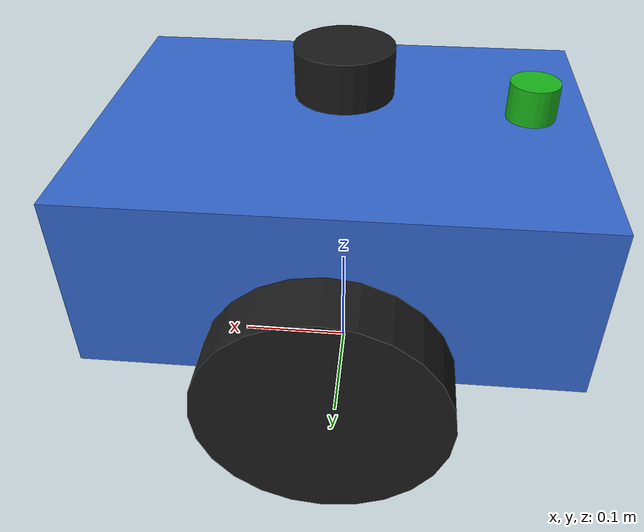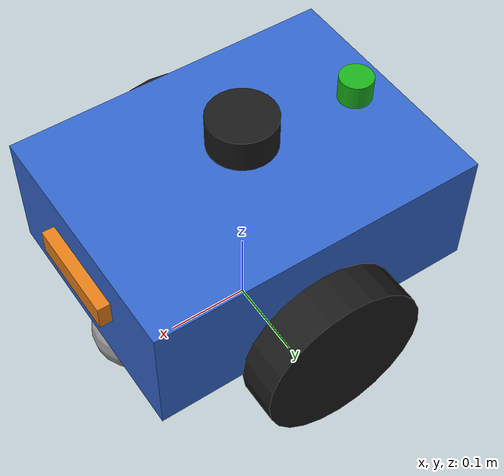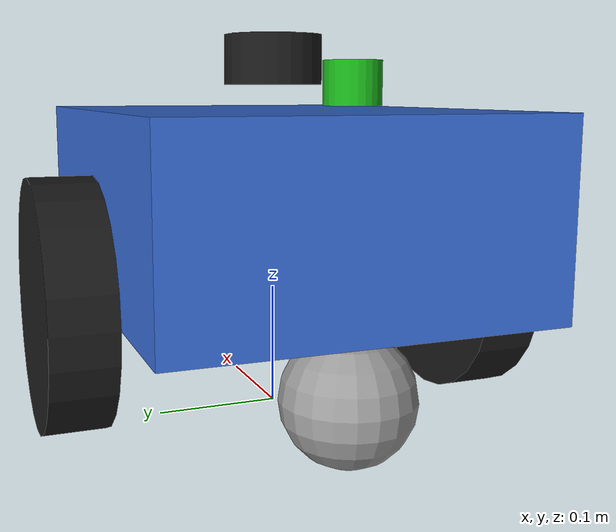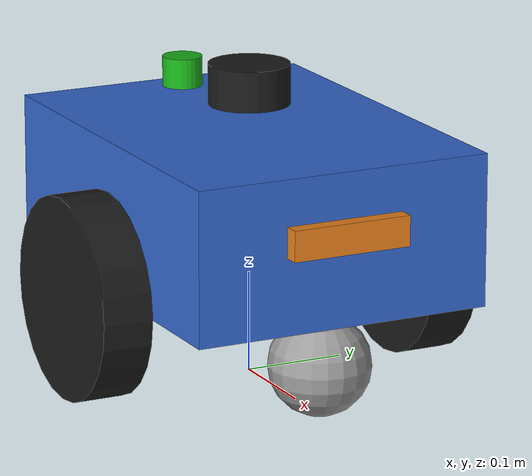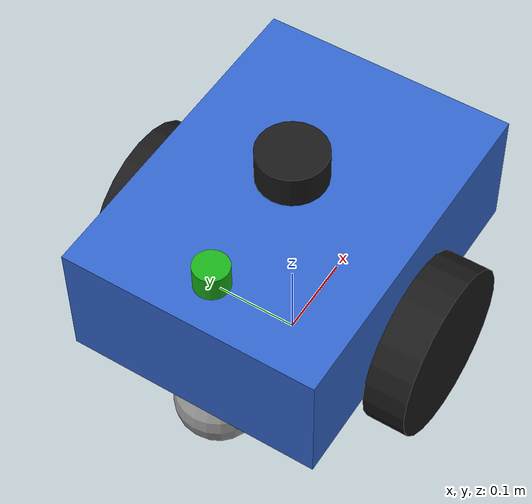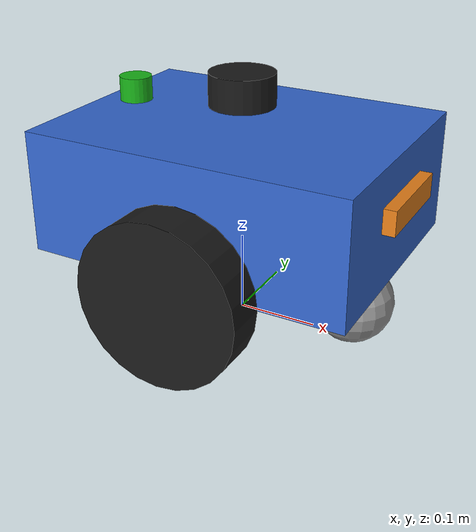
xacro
<?xml version="1.0"?>
<robot name="amr" xmlns:xacro="http://www.ros.org/wiki/xacro">

  <!-- ============================ Parameters ============================ -->
  <xacro:property name="base_length"       value="0.40"/>
  <xacro:property name="base_width"        value="0.30"/>
  <xacro:property name="base_height"       value="0.15"/>
  <xacro:property name="base_mass"         value="5.0"/>

  <xacro:property name="wheel_radius"      value="0.10"/>
  <xacro:property name="wheel_width"       value="0.05"/>
  <xacro:property name="wheel_mass"        value="0.5"/>
  <xacro:property name="wheel_separation"  value="0.35"/>

  <xacro:property name="caster_radius"     value="0.05"/>
  <xacro:property name="caster_mass"       value="0.1"/>

  <xacro:property name="PI" value="3.14159265359"/>

  <!-- ============================ Materials ============================= -->
  <material name="blue">  <color rgba="0.2 0.4 0.8 1.0"/></material>
  <material name="dark">  <color rgba="0.1 0.1 0.1 1.0"/></material>
  <material name="grey">  <color rgba="0.6 0.6 0.6 1.0"/></material>
  <material name="green"> <color rgba="0.1 0.7 0.1 1.0"/></material>
  <material name="orange"><color rgba="0.9 0.5 0.1 1.0"/></material>

  <!-- ============================ Inertia macros ======================= -->
  <xacro:macro name="box_inertia" params="m x y z">
    <inertial>
      <origin xyz="0 0 0" rpy="0 0 0"/>
      <mass value="${m}"/>
      <inertia ixx="${m*(y*y+z*z)/12.0}" ixy="0.0" ixz="0.0"
               iyy="${m*(x*x+z*z)/12.0}" iyz="0.0"
               izz="${m*(x*x+y*y)/12.0}"/>
    </inertial>
  </xacro:macro>

  <xacro:macro name="cylinder_inertia" params="m r h">
    <inertial>
      <origin xyz="0 0 0" rpy="${PI/2} 0 0"/>
      <mass value="${m}"/>
      <inertia ixx="${m*(3*r*r+h*h)/12.0}" ixy="0.0" ixz="0.0"
               iyy="${m*(3*r*r+h*h)/12.0}" iyz="0.0"
               izz="${m*r*r/2.0}"/>
    </inertial>
  </xacro:macro>

  <xacro:macro name="sphere_inertia" params="m r">
    <inertial>
      <origin xyz="0 0 0" rpy="0 0 0"/>
      <mass value="${m}"/>
      <inertia ixx="${2*m*r*r/5.0}" ixy="0.0" ixz="0.0"
               iyy="${2*m*r*r/5.0}" iyz="0.0"
               izz="${2*m*r*r/5.0}"/>
    </inertial>
  </xacro:macro>

  <!-- ============================ base_footprint ======================= -->
  <link name="base_footprint"/>

  <joint name="base_joint" type="fixed">
    <parent link="base_footprint"/>
    <child  link="base_link"/>
    <origin xyz="0 0 ${wheel_radius}" rpy="0 0 0"/>
  </joint>

  <!-- ============================ base_link ============================= -->
  <link name="base_link">
    <visual>
      <origin xyz="0 0 ${base_height/2}" rpy="0 0 0"/>
      <geometry><box size="${base_length} ${base_width} ${base_height}"/></geometry>
      <material name="blue"/>
    </visual>
    <collision>
      <origin xyz="0 0 ${base_height/2}" rpy="0 0 0"/>
      <geometry><box size="${base_length} ${base_width} ${base_height}"/></geometry>
    </collision>
    <xacro:box_inertia m="${base_mass}" x="${base_length}" y="${base_width}" z="${base_height}"/>
  </link>

  <!-- ============================ Drive wheels ========================= -->
  <xacro:macro name="wheel" params="prefix reflect">
    <link name="${prefix}_wheel">
      <visual>
        <origin xyz="0 0 0" rpy="${PI/2} 0 0"/>
        <geometry><cylinder radius="${wheel_radius}" length="${wheel_width}"/></geometry>
        <material name="dark"/>
      </visual>
      <collision>
        <origin xyz="0 0 0" rpy="${PI/2} 0 0"/>
        <geometry><cylinder radius="${wheel_radius}" length="${wheel_width}"/></geometry>
      </collision>
      <xacro:cylinder_inertia m="${wheel_mass}" r="${wheel_radius}" h="${wheel_width}"/>
    </link>

    <joint name="${prefix}_wheel_joint" type="continuous">
      <parent link="base_link"/>
      <child  link="${prefix}_wheel"/>
      <origin xyz="0 ${reflect*wheel_separation/2} 0" rpy="0 0 0"/>
      <axis xyz="0 1 0"/>
    </joint>
  </xacro:macro>

  <xacro:wheel prefix="left"  reflect="1"/>
  <xacro:wheel prefix="right" reflect="-1"/>

  <!-- ============================ Caster wheels ======================= -->
  <xacro:macro name="caster" params="prefix x">
    <link name="${prefix}_caster">
      <visual>
        <origin xyz="0 0 0" rpy="0 0 0"/>
        <geometry><sphere radius="${caster_radius}"/></geometry>
        <material name="grey"/>
      </visual>
      <collision>
        <origin xyz="0 0 0" rpy="0 0 0"/>
        <geometry><sphere radius="${caster_radius}"/></geometry>
      </collision>
      <xacro:sphere_inertia m="${caster_mass}" r="${caster_radius}"/>
    </link>

    <joint name="${prefix}_caster_joint" type="fixed">
      <parent link="base_link"/>
      <child  link="${prefix}_caster"/>
      <origin xyz="${x} 0 ${-(wheel_radius-caster_radius)}" rpy="0 0 0"/>
    </joint>

    <gazebo reference="${prefix}_caster">
      <mu1>0.0</mu1>
      <mu2>0.0</mu2>
      <material>Gazebo/Grey</material>
    </gazebo>
  </xacro:macro>

  <xacro:caster prefix="front" x="${ base_length/2 - caster_radius}"/>
  <xacro:caster prefix="rear"  x="${-base_length/2 + caster_radius}"/>

  <!-- ============================ Includes ============================= -->
  <xacro:include filename="$(find amr_description)/urdf/sensors.xacro"/>
  <xacro:include filename="$(find amr_description)/urdf/gazebo_plugins.xacro"/>

</robot>

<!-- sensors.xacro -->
<robot xmlns:xacro="http://www.ros.org/wiki/xacro">

  <!-- Small helper inertia for lightweight sensor links -->
  <xacro:macro name="small_inertia" params="m">
    <inertial>
      <origin xyz="0 0 0" rpy="0 0 0"/>
      <mass value="${m}"/>
      <inertia ixx="1e-4" ixy="0" ixz="0" iyy="1e-4" iyz="0" izz="1e-4"/>
    </inertial>
  </xacro:macro>

  <!-- ============================ 2D Lidar ============================= -->
  <link name="lidar_link">
    <visual>
      <origin xyz="0 0 0" rpy="0 0 0"/>
      <geometry><cylinder radius="0.04" length="0.04"/></geometry>
      <material name="dark"/>
    </visual>
    <collision>
      <origin xyz="0 0 0" rpy="0 0 0"/>
      <geometry><cylinder radius="0.04" length="0.04"/></geometry>
    </collision>
    <xacro:small_inertia m="0.1"/>
  </link>

  <joint name="lidar_joint" type="fixed">
    <parent link="base_link"/>
    <child  link="lidar_link"/>
    <origin xyz="0.0 0.0 ${base_height + 0.04}" rpy="0 0 0"/>
  </joint>

  <!-- ===================== Depth camera (Orbbec Astra) ================= -->
  <link name="camera_link">
    <visual>
      <origin xyz="0 0 0" rpy="0 0 0"/>
      <geometry><box size="0.03 0.12 0.03"/></geometry>
      <material name="orange"/>
    </visual>
    <collision>
      <origin xyz="0 0 0" rpy="0 0 0"/>
      <geometry><box size="0.03 0.12 0.03"/></geometry>
    </collision>
    <xacro:small_inertia m="0.1"/>
  </link>

  <joint name="camera_joint" type="fixed">
    <parent link="base_link"/>
    <child  link="camera_link"/>
    <origin xyz="${base_length/2} 0.0 ${base_height*0.6}" rpy="0 0 0"/>
  </joint>

  <!-- Optical frame (REP-103): z forward, x right, y down -->
  <link name="camera_depth_optical_frame"/>
  <joint name="camera_depth_optical_joint" type="fixed">
    <parent link="camera_link"/>
    <child  link="camera_depth_optical_frame"/>
    <origin xyz="0 0 0" rpy="${-PI/2} 0 ${-PI/2}"/>
  </joint>

  <!-- ============================ IMU ================================== -->
  <link name="imu_link">
    <xacro:small_inertia m="0.02"/>
  </link>
  <joint name="imu_joint" type="fixed">
    <parent link="base_link"/>
    <child  link="imu_link"/>
    <origin xyz="0 0 ${base_height*0.4}" rpy="0 0 0"/>
  </joint>

  <!-- ============================ GPS ================================== -->
  <link name="gps_link">
    <visual>
      <origin xyz="0 0 0" rpy="0 0 0"/>
      <geometry><cylinder radius="0.02" length="0.03"/></geometry>
      <material name="green"/>
    </visual>
    <xacro:small_inertia m="0.02"/>
  </link>
  <joint name="gps_joint" type="fixed">
    <parent link="base_link"/>
    <child  link="gps_link"/>
    <origin xyz="${-base_length/2 + 0.05} 0 ${base_height + 0.02}" rpy="0 0 0"/>
  </joint>

</robot>
